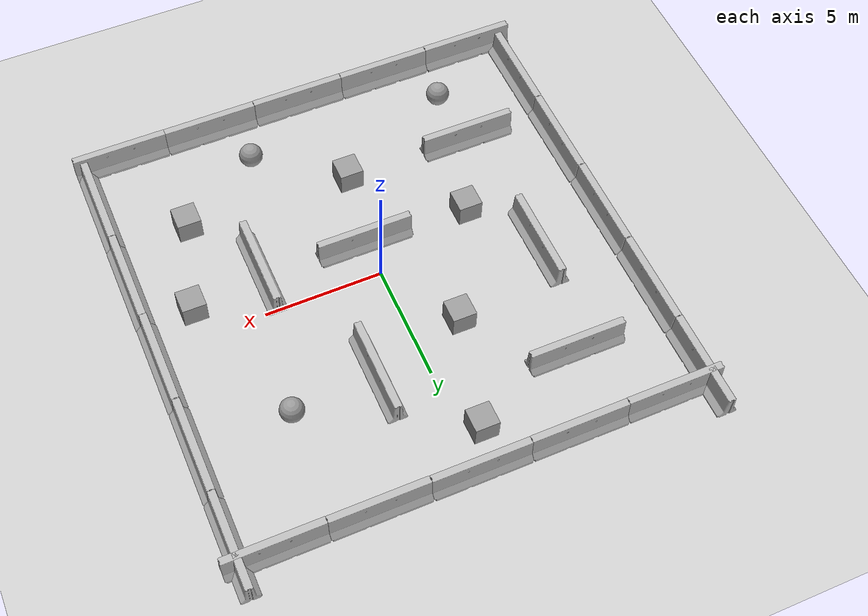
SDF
<sdf version="1.6">
 <world name="default">
  <light name="sun" type="directional">
   <pose>0 0 10 0 -0 0</pose>
   <diffuse>0.8 0.8 0.8 1</diffuse>
   <specular>0.1 0.1 0.1 1</specular>
   <attenuation>
    <range>1000</range>
    <constant>0.9</constant>
    <linear>0.01</linear>
    <quadratic>0.001</quadratic>
   </attenuation>
   <direction>-0.5 0.5 -1</direction>
  </light>
  <model name="ground_plane">
   <static>1</static>
   <link name="link">
    <collision name="collision">
     <geometry><plane><normal>0 0 1</normal><size>100 100</size></plane></geometry>
     <surface><friction><ode><mu>100</mu><mu2>50</mu2></ode></friction></surface>
    </collision>
    <visual name="visual">
     <cast_shadows>0</cast_shadows>
     <geometry><plane><normal>0 0 1</normal><size>100 100</size></plane></geometry>
     <material>
      <script><uri>file://media/materials/scripts/gazebo.material</uri><name>Gazebo/Grey</name></script>
     </material>
    </visual>
   </link>
  </model>
  <physics name="default_physics" default="0" type="ode">
   <max_step_size>0.01</max_step_size>
   <real_time_factor>1</real_time_factor>
   <real_time_update_rate>100</real_time_update_rate>
  </physics>
  <gravity>0 0 -9.8</gravity>
  <magnetic_field>6e-06 2.3e-05 -4.2e-05</magnetic_field>
  <atmosphere type="adiabatic"/>
  <scene><ambient>0.4 0.4 0.4 1</ambient><background>0.7 0.7 0.7 1</background><shadows>1</shadows></scene>
  <spherical_coordinates>
   <surface_model>EARTH_WGS84</surface_model>
   <latitude_deg>0</latitude_deg>
   <longitude_deg>0</longitude_deg>
   <elevation>0</elevation>
   <heading_deg>0</heading_deg>
  </spherical_coordinates>
  <model name="jersey_barrier">
   <static>1</static>
   <link name="link">
    <visual name="visual">
     <geometry>
      <mesh><uri>model://jersey_barrier/meshes/jersey_barrier.dae</uri><scale>1 1 1</scale></mesh>
     </geometry>
    </visual>
    <collision name="upright">
     <pose>0 0 0.5715 0 -0 0</pose>
     <geometry><box><size>4.06542 0.3063 1.143</size></box></geometry>
    </collision>
    <collision name="base">
     <pose>0 0 0.032258 0 -0 0</pose>
     <geometry><box><size>4.06542 0.8107 0.064516</size></box></geometry>
    </collision>
    <collision name="base2">
     <pose>0 0 0.1 0 -0 0</pose>
     <geometry><box><size>4.06542 0.65 0.1</size></box></geometry>
    </collision>
    <collision name="base3">
     <pose>0 0 0.2 0 -0 0</pose>
     <geometry><box><size>4.06542 0.5 0.1</size></box></geometry>
    </collision>
    <collision name="left-angle">
     <pose>0 -0.224 0.2401 0.9 -0 0</pose>
     <geometry><box><size>4.06542 0.5 0.064516</size></box></geometry>
    </collision>
    <collision name="right-angle">
     <pose>0 0.224 0.2401 -0.9 0 0</pose>
     <geometry><box><size>4.06542 0.5 0.064516</size></box></geometry>
    </collision>
   </link>
   <pose>-8.03161 9.55323 0 0 -0 0</pose>
  </model>
  <model name="jersey_barrier_clone">
   <static>1</static>
   <link name="link">
    <visual name="visual">
     <geometry>
      <mesh><uri>model://jersey_barrier/meshes/jersey_barrier.dae</uri><scale>1 1 1</scale></mesh>
     </geometry>
    </visual>
    <collision name="upright">
     <pose>0 0 0.5715 0 -0 0</pose>
     <geometry><box><size>4.06542 0.3063 1.143</size></box></geometry>
    </collision>
    <collision name="base">
     <pose>0 0 0.032258 0 -0 0</pose>
     <geometry><box><size>4.06542 0.8107 0.064516</size></box></geometry>
    </collision>
    <collision name="base2">
     <pose>0 0 0.1 0 -0 0</pose>
     <geometry><box><size>4.06542 0.65 0.1</size></box></geometry>
    </collision>
    <collision name="base3">
     <pose>0 0 0.2 0 -0 0</pose>
     <geometry><box><size>4.06542 0.5 0.1</size></box></geometry>
    </collision>
    <collision name="left-angle">
     <pose>0 -0.224 0.2401 0.9 -0 0</pose>
     <geometry><box><size>4.06542 0.5 0.064516</size></box></geometry>
    </collision>
    <collision name="right-angle">
     <pose>0 0.224 0.2401 -0.9 0 0</pose>
     <geometry><box><size>4.06542 0.5 0.064516</size></box></geometry>
    </collision>
   </link>
   <pose>-3.98653 9.56272 0 0 -0 0</pose>
  </model>
  <model name="jersey_barrier_clone_0">
   <static>1</static>
   <link name="link">
    <visual name="visual">
     <geometry>
      <mesh><uri>model://jersey_barrier/meshes/jersey_barrier.dae</uri><scale>1 1 1</scale></mesh>
     </geometry>
    </visual>
    <collision name="upright">
     <pose>0 0 0.5715 0 -0 0</pose>
     <geometry><box><size>4.06542 0.3063 1.143</size></box></geometry>
    </collision>
    <collision name="base">
     <pose>0 0 0.032258 0 -0 0</pose>
     <geometry><box><size>4.06542 0.8107 0.064516</size></box></geometry>
    </collision>
    <collision name="base2">
     <pose>0 0 0.1 0 -0 0</pose>
     <geometry><box><size>4.06542 0.65 0.1</size></box></geometry>
    </collision>
    <collision name="base3">
     <pose>0 0 0.2 0 -0 0</pose>
     <geometry><box><size>4.06542 0.5 0.1</size></box></geometry>
    </collision>
    <collision name="left-angle">
     <pose>0 -0.224 0.2401 0.9 -0 0</pose>
     <geometry><box><size>4.06542 0.5 0.064516</size></box></geometry>
    </collision>
    <collision name="right-angle">
     <pose>0 0.224 0.2401 -0.9 0 0</pose>
     <geometry><box><size>4.06542 0.5 0.064516</size></box></geometry>
    </collision>
   </link>
   <pose>0.055023 9.57121 0 0 -0 0</pose>
  </model>
  <model name="jersey_barrier_clone_1">
   <static>1</static>
   <link name="link">
    <visual name="visual">
     <geometry>
      <mesh><uri>model://jersey_barrier/meshes/jersey_barrier.dae</uri><scale>1 1 1</scale></mesh>
     </geometry>
    </visual>
    <collision name="upright">
     <pose>0 0 0.5715 0 -0 0</pose>
     <geometry><box><size>4.06542 0.3063 1.143</size></box></geometry>
    </collision>
    <collision name="base">
     <pose>0 0 0.032258 0 -0 0</pose>
     <geometry><box><size>4.06542 0.8107 0.064516</size></box></geometry>
    </collision>
    <collision name="base2">
     <pose>0 0 0.1 0 -0 0</pose>
     <geometry><box><size>4.06542 0.65 0.1</size></box></geometry>
    </collision>
    <collision name="base3">
     <pose>0 0 0.2 0 -0 0</pose>
     <geometry><box><size>4.06542 0.5 0.1</size></box></geometry>
    </collision>
    <collision name="left-angle">
     <pose>0 -0.224 0.2401 0.9 -0 0</pose>
     <geometry><box><size>4.06542 0.5 0.064516</size></box></geometry>
    </collision>
    <collision name="right-angle">
     <pose>0 0.224 0.2401 -0.9 0 0</pose>
     <geometry><box><size>4.06542 0.5 0.064516</size></box></geometry>
    </collision>
   </link>
   <pose>4.10906 9.55829 0 0 -0 0</pose>
  </model>
  <model name="jersey_barrier_clone_2">
   <static>1</static>
   <link name="link">
    <visual name="visual">
     <geometry>
      <mesh><uri>model://jersey_barrier/meshes/jersey_barrier.dae</uri><scale>1 1 1</scale></mesh>
     </geometry>
    </visual>
    <collision name="upright">
     <pose>0 0 0.5715 0 -0 0</pose>
     <geometry><box><size>4.06542 0.3063 1.143</size></box></geometry>
    </collision>
    <collision name="base">
     <pose>0 0 0.032258 0 -0 0</pose>
     <geometry><box><size>4.06542 0.8107 0.064516</size></box></geometry>
    </collision>
    <collision name="base2">
     <pose>0 0 0.1 0 -0 0</pose>
     <geometry><box><size>4.06542 0.65 0.1</size></box></geometry>
    </collision>
    <collision name="base3">
     <pose>0 0 0.2 0 -0 0</pose>
     <geometry><box><size>4.06542 0.5 0.1</size></box></geometry>
    </collision>
    <collision name="left-angle">
     <pose>0 -0.224 0.2401 0.9 -0 0</pose>
     <geometry><box><size>4.06542 0.5 0.064516</size></box></geometry>
    </collision>
    <collision name="right-angle">
     <pose>0 0.224 0.2401 -0.9 0 0</pose>
     <geometry><box><size>4.06542 0.5 0.064516</size></box></geometry>
    </collision>
   </link>
   <pose>8.15037 9.54861 0 0 -0 0</pose>
  </model>
  <model name="jersey_barrier_clone_3">
   <static>1</static>
   <link name="link">
    <visual name="visual">
     <geometry>
      <mesh><uri>model://jersey_barrier/meshes/jersey_barrier.dae</uri><scale>1 1 1</scale></mesh>
     </geometry>
    </visual>
    <collision name="upright">
     <pose>0 0 0.5715 0 -0 0</pose>
     <geometry><box><size>4.06542 0.3063 1.143</size></box></geometry>
    </collision>
    <collision name="base">
     <pose>0 0 0.032258 0 -0 0</pose>
     <geometry><box><size>4.06542 0.8107 0.064516</size></box></geometry>
    </collision>
    <collision name="base2">
     <pose>0 0 0.1 0 -0 0</pose>
     <geometry><box><size>4.06542 0.65 0.1</size></box></geometry>
    </collision>
    <collision name="base3">
     <pose>0 0 0.2 0 -0 0</pose>
     <geometry><box><size>4.06542 0.5 0.1</size></box></geometry>
    </collision>
    <collision name="left-angle">
     <pose>0 -0.224 0.2401 0.9 -0 0</pose>
     <geometry><box><size>4.06542 0.5 0.064516</size></box></geometry>
    </collision>
    <collision name="right-angle">
     <pose>0 0.224 0.2401 -0.9 0 0</pose>
     <geometry><box><size>4.06542 0.5 0.064516</size></box></geometry>
    </collision>
   </link>
   <pose>7.94638 -9.57135 0 0 -0 0</pose>
  </model>
  <model name="jersey_barrier_clone_4">
   <static>1</static>
   <link name="link">
    <visual name="visual">
     <geometry>
      <mesh><uri>model://jersey_barrier/meshes/jersey_barrier.dae</uri><scale>1 1 1</scale></mesh>
     </geometry>
    </visual>
    <collision name="upright">
     <pose>0 0 0.5715 0 -0 0</pose>
     <geometry><box><size>4.06542 0.3063 1.143</size></box></geometry>
    </collision>
    <collision name="base">
     <pose>0 0 0.032258 0 -0 0</pose>
     <geometry><box><size>4.06542 0.8107 0.064516</size></box></geometry>
    </collision>
    <collision name="base2">
     <pose>0 0 0.1 0 -0 0</pose>
     <geometry><box><size>4.06542 0.65 0.1</size></box></geometry>
    </collision>
    <collision name="base3">
     <pose>0 0 0.2 0 -0 0</pose>
     <geometry><box><size>4.06542 0.5 0.1</size></box></geometry>
    </collision>
    <collision name="left-angle">
     <pose>0 -0.224 0.2401 0.9 -0 0</pose>
     <geometry><box><size>4.06542 0.5 0.064516</size></box></geometry>
    </collision>
    <collision name="right-angle">
     <pose>0 0.224 0.2401 -0.9 0 0</pose>
     <geometry><box><size>4.06542 0.5 0.064516</size></box></geometry>
    </collision>
   </link>
   <pose>3.9444 -9.56272 0 0 -0 0</pose>
  </model>
  <model name="jersey_barrier_clone_5">
   <static>1</static>
   <link name="link">
    <visual name="visual">
     <geometry>
      <mesh><uri>model://jersey_barrier/meshes/jersey_barrier.dae</uri><scale>1 1 1</scale></mesh>
     </geometry>
    </visual>
    <collision name="upright">
     <pose>0 0 0.5715 0 -0 0</pose>
     <geometry><box><size>4.06542 0.3063 1.143</size></box></geometry>
    </collision>
    <collision name="base">
     <pose>0 0 0.032258 0 -0 0</pose>
     <geometry><box><size>4.06542 0.8107 0.064516</size></box></geometry>
    </collision>
    <collision name="base2">
     <pose>0 0 0.1 0 -0 0</pose>
     <geometry><box><size>4.06542 0.65 0.1</size></box></geometry>
    </collision>
    <collision name="base3">
     <pose>0 0 0.2 0 -0 0</pose>
     <geometry><box><size>4.06542 0.5 0.1</size></box></geometry>
    </collision>
    <collision name="left-angle">
     <pose>0 -0.224 0.2401 0.9 -0 0</pose>
     <geometry><box><size>4.06542 0.5 0.064516</size></box></geometry>
    </collision>
    <collision name="right-angle">
     <pose>0 0.224 0.2401 -0.9 0 0</pose>
     <geometry><box><size>4.06542 0.5 0.064516</size></box></geometry>
    </collision>
   </link>
   <pose>-0.089366 -9.57464 0 0 -0 0</pose>
  </model>
  <model name="jersey_barrier_clone_6">
   <static>1</static>
   <link name="link">
    <visual name="visual">
     <geometry>
      <mesh><uri>model://jersey_barrier/meshes/jersey_barrier.dae</uri><scale>1 1 1</scale></mesh>
     </geometry>
    </visual>
    <collision name="upright">
     <pose>0 0 0.5715 0 -0 0</pose>
     <geometry><box><size>4.06542 0.3063 1.143</size></box></geometry>
    </collision>
    <collision name="base">
     <pose>0 0 0.032258 0 -0 0</pose>
     <geometry><box><size>4.06542 0.8107 0.064516</size></box></geometry>
    </collision>
    <collision name="base2">
     <pose>0 0 0.1 0 -0 0</pose>
     <geometry><box><size>4.06542 0.65 0.1</size></box></geometry>
    </collision>
    <collision name="base3">
     <pose>0 0 0.2 0 -0 0</pose>
     <geometry><box><size>4.06542 0.5 0.1</size></box></geometry>
    </collision>
    <collision name="left-angle">
     <pose>0 -0.224 0.2401 0.9 -0 0</pose>
     <geometry><box><size>4.06542 0.5 0.064516</size></box></geometry>
    </collision>
    <collision name="right-angle">
     <pose>0 0.224 0.2401 -0.9 0 0</pose>
     <geometry><box><size>4.06542 0.5 0.064516</size></box></geometry>
    </collision>
   </link>
   <pose>-4.1221 -9.57024 0 0 -0 0</pose>
  </model>
  <model name="jersey_barrier_clone_7">
   <static>1</static>
   <link name="link">
    <visual name="visual">
     <geometry>
      <mesh><uri>model://jersey_barrier/meshes/jersey_barrier.dae</uri><scale>1 1 1</scale></mesh>
     </geometry>
    </visual>
    <collision name="upright">
     <pose>0 0 0.5715 0 -0 0</pose>
     <geometry><box><size>4.06542 0.3063 1.143</size></box></geometry>
    </collision>
    <collision name="base">
     <pose>0 0 0.032258 0 -0 0</pose>
     <geometry><box><size>4.06542 0.8107 0.064516</size></box></geometry>
    </collision>
    <collision name="base2">
     <pose>0 0 0.1 0 -0 0</pose>
     <geometry><box><size>4.06542 0.65 0.1</size></box></geometry>
    </collision>
    <collision name="base3">
     <pose>0 0 0.2 0 -0 0</pose>
     <geometry><box><size>4.06542 0.5 0.1</size></box></geometry>
    </collision>
    <collision name="left-angle">
     <pose>0 -0.224 0.2401 0.9 -0 0</pose>
     <geometry><box><size>4.06542 0.5 0.064516</size></box></geometry>
    </collision>
    <collision name="right-angle">
     <pose>0 0.224 0.2401 -0.9 0 0</pose>
     <geometry><box><size>4.06542 0.5 0.064516</size></box></geometry>
    </collision>
   </link>
   <pose>-8.16252 -9.57967 0 0 -0 0</pose>
  </model>
  <model name="jersey_barrier_clone_8">
   <static>1</static>
   <link name="link">
    <visual name="visual">
     <geometry>
      <mesh><uri>model://jersey_barrier/meshes/jersey_barrier.dae</uri><scale>1 1 1</scale></mesh>
     </geometry>
    </visual>
    <collision name="upright">
     <pose>0 0 0.5715 0 -0 0</pose>
     <geometry><box><size>4.06542 0.3063 1.143</size></box></geometry>
    </collision>
    <collision name="base">
     <pose>0 0 0.032258 0 -0 0</pose>
     <geometry><box><size>4.06542 0.8107 0.064516</size></box></geometry>
    </collision>
    <collision name="base2">
     <pose>0 0 0.1 0 -0 0</pose>
     <geometry><box><size>4.06542 0.65 0.1</size></box></geometry>
    </collision>
    <collision name="base3">
     <pose>0 0 0.2 0 -0 0</pose>
     <geometry><box><size>4.06542 0.5 0.1</size></box></geometry>
    </collision>
    <collision name="left-angle">
     <pose>0 -0.224 0.2401 0.9 -0 0</pose>
     <geometry><box><size>4.06542 0.5 0.064516</size></box></geometry>
    </collision>
    <collision name="right-angle">
     <pose>0 0.224 0.2401 -0.9 0 0</pose>
     <geometry><box><size>4.06542 0.5 0.064516</size></box></geometry>
    </collision>
   </link>
   <pose>-9.56309 -7.16364 0 0 0 -1.56996</pose>
  </model>
  <model name="jersey_barrier_clone_8_clone">
   <static>1</static>
   <link name="link">
    <visual name="visual">
     <geometry>
      <mesh><uri>model://jersey_barrier/meshes/jersey_barrier.dae</uri><scale>1 1 1</scale></mesh>
     </geometry>
    </visual>
    <collision name="upright">
     <pose>0 0 0.5715 0 -0 0</pose>
     <geometry><box><size>4.06542 0.3063 1.143</size></box></geometry>
    </collision>
    <collision name="base">
     <pose>0 0 0.032258 0 -0 0</pose>
     <geometry><box><size>4.06542 0.8107 0.064516</size></box></geometry>
    </collision>
    <collision name="base2">
     <pose>0 0 0.1 0 -0 0</pose>
     <geometry><box><size>4.06542 0.65 0.1</size></box></geometry>
    </collision>
    <collision name="base3">
     <pose>0 0 0.2 0 -0 0</pose>
     <geometry><box><size>4.06542 0.5 0.1</size></box></geometry>
    </collision>
    <collision name="left-angle">
     <pose>0 -0.224 0.2401 0.9 -0 0</pose>
     <geometry><box><size>4.06542 0.5 0.064516</size></box></geometry>
    </collision>
    <collision name="right-angle">
     <pose>0 0.224 0.2401 -0.9 0 0</pose>
     <geometry><box><size>4.06542 0.5 0.064516</size></box></geometry>
    </collision>
   </link>
   <pose>-9.5624 -3.11245 0 0 0 -1.56996</pose>
  </model>
  <model name="jersey_barrier_clone_8_clone_0">
   <static>1</static>
   <link name="link">
    <visual name="visual">
     <geometry>
      <mesh><uri>model://jersey_barrier/meshes/jersey_barrier.dae</uri><scale>1 1 1</scale></mesh>
     </geometry>
    </visual>
    <collision name="upright">
     <pose>0 0 0.5715 0 -0 0</pose>
     <geometry><box><size>4.06542 0.3063 1.143</size></box></geometry>
    </collision>
    <collision name="base">
     <pose>0 0 0.032258 0 -0 0</pose>
     <geometry><box><size>4.06542 0.8107 0.064516</size></box></geometry>
    </collision>
    <collision name="base2">
     <pose>0 0 0.1 0 -0 0</pose>
     <geometry><box><size>4.06542 0.65 0.1</size></box></geometry>
    </collision>
    <collision name="base3">
     <pose>0 0 0.2 0 -0 0</pose>
     <geometry><box><size>4.06542 0.5 0.1</size></box></geometry>
    </collision>
    <collision name="left-angle">
     <pose>0 -0.224 0.2401 0.9 -0 0</pose>
     <geometry><box><size>4.06542 0.5 0.064516</size></box></geometry>
    </collision>
    <collision name="right-angle">
     <pose>0 0.224 0.2401 -0.9 0 0</pose>
     <geometry><box><size>4.06542 0.5 0.064516</size></box></geometry>
    </collision>
   </link>
   <pose>-9.57906 0.935057 0 0 0 -1.56996</pose>
  </model>
  <model name="jersey_barrier_clone_8_clone_1">
   <static>1</static>
   <link name="link">
    <visual name="visual">
     <geometry>
      <mesh><uri>model://jersey_barrier/meshes/jersey_barrier.dae</uri><scale>1 1 1</scale></mesh>
     </geometry>
    </visual>
    <collision name="upright">
     <pose>0 0 0.5715 0 -0 0</pose>
     <geometry><box><size>4.06542 0.3063 1.143</size></box></geometry>
    </collision>
    <collision name="base">
     <pose>0 0 0.032258 0 -0 0</pose>
     <geometry><box><size>4.06542 0.8107 0.064516</size></box></geometry>
    </collision>
    <collision name="base2">
     <pose>0 0 0.1 0 -0 0</pose>
     <geometry><box><size>4.06542 0.65 0.1</size></box></geometry>
    </collision>
    <collision name="base3">
     <pose>0 0 0.2 0 -0 0</pose>
     <geometry><box><size>4.06542 0.5 0.1</size></box></geometry>
    </collision>
    <collision name="left-angle">
     <pose>0 -0.224 0.2401 0.9 -0 0</pose>
     <geometry><box><size>4.06542 0.5 0.064516</size></box></geometry>
    </collision>
    <collision name="right-angle">
     <pose>0 0.224 0.2401 -0.9 0 0</pose>
     <geometry><box><size>4.06542 0.5 0.064516</size></box></geometry>
    </collision>
   </link>
   <pose>-9.58566 5.00026 0 0 0 -1.56996</pose>
  </model>
  <model name="jersey_barrier_clone_8_clone_2">
   <static>1</static>
   <link name="link">
    <visual name="visual">
     <geometry>
      <mesh><uri>model://jersey_barrier/meshes/jersey_barrier.dae</uri><scale>1 1 1</scale></mesh>
     </geometry>
    </visual>
    <collision name="upright">
     <pose>0 0 0.5715 0 -0 0</pose>
     <geometry><box><size>4.06542 0.3063 1.143</size></box></geometry>
    </collision>
    <collision name="base">
     <pose>0 0 0.032258 0 -0 0</pose>
     <geometry><box><size>4.06542 0.8107 0.064516</size></box></geometry>
    </collision>
    <collision name="base2">
     <pose>0 0 0.1 0 -0 0</pose>
     <geometry><box><size>4.06542 0.65 0.1</size></box></geometry>
    </collision>
    <collision name="base3">
     <pose>0 0 0.2 0 -0 0</pose>
     <geometry><box><size>4.06542 0.5 0.1</size></box></geometry>
    </collision>
    <collision name="left-angle">
     <pose>0 -0.224 0.2401 0.9 -0 0</pose>
     <geometry><box><size>4.06542 0.5 0.064516</size></box></geometry>
    </collision>
    <collision name="right-angle">
     <pose>0 0.224 0.2401 -0.9 0 0</pose>
     <geometry><box><size>4.06542 0.5 0.064516</size></box></geometry>
    </collision>
   </link>
   <pose>-9.59842 9.04591 0 0 0 -1.56996</pose>
  </model>
  <model name="jersey_barrier_clone_8_clone_3">
   <static>1</static>
   <link name="link">
    <visual name="visual">
     <geometry>
      <mesh><uri>model://jersey_barrier/meshes/jersey_barrier.dae</uri><scale>1 1 1</scale></mesh>
     </geometry>
    </visual>
    <collision name="upright">
     <pose>0 0 0.5715 0 -0 0</pose>
     <geometry><box><size>4.06542 0.3063 1.143</size></box></geometry>
    </collision>
    <collision name="base">
     <pose>0 0 0.032258 0 -0 0</pose>
     <geometry><box><size>4.06542 0.8107 0.064516</size></box></geometry>
    </collision>
    <collision name="base2">
     <pose>0 0 0.1 0 -0 0</pose>
     <geometry><box><size>4.06542 0.65 0.1</size></box></geometry>
    </collision>
    <collision name="base3">
     <pose>0 0 0.2 0 -0 0</pose>
     <geometry><box><size>4.06542 0.5 0.1</size></box></geometry>
    </collision>
    <collision name="left-angle">
     <pose>0 -0.224 0.2401 0.9 -0 0</pose>
     <geometry><box><size>4.06542 0.5 0.064516</size></box></geometry>
    </collision>
    <collision name="right-angle">
     <pose>0 0.224 0.2401 -0.9 0 0</pose>
     <geometry><box><size>4.06542 0.5 0.064516</size></box></geometry>
    </collision>
   </link>
   <pose>9.56686 -7.27337 0 0 0 -1.56996</pose>
  </model>
  <model name="jersey_barrier_clone_8_clone_4">
   <static>1</static>
   <link name="link">
    <visual name="visual">
     <geometry>
      <mesh><uri>model://jersey_barrier/meshes/jersey_barrier.dae</uri><scale>1 1 1</scale></mesh>
     </geometry>
    </visual>
    <collision name="upright">
     <pose>0 0 0.5715 0 -0 0</pose>
     <geometry><box><size>4.06542 0.3063 1.143</size></box></geometry>
    </collision>
    <collision name="base">
     <pose>0 0 0.032258 0 -0 0</pose>
     <geometry><box><size>4.06542 0.8107 0.064516</size></box></geometry>
    </collision>
    <collision name="base2">
     <pose>0 0 0.1 0 -0 0</pose>
     <geometry><box><size>4.06542 0.65 0.1</size></box></geometry>
    </collision>
    <collision name="base3">
     <pose>0 0 0.2 0 -0 0</pose>
     <geometry><box><size>4.06542 0.5 0.1</size></box></geometry>
    </collision>
    <collision name="left-angle">
     <pose>0 -0.224 0.2401 0.9 -0 0</pose>
     <geometry><box><size>4.06542 0.5 0.064516</size></box></geometry>
    </collision>
    <collision name="right-angle">
     <pose>0 0.224 0.2401 -0.9 0 0</pose>
     <geometry><box><size>4.06542 0.5 0.064516</size></box></geometry>
    </collision>
   </link>
   <pose>9.56899 -3.24118 0 0 0 -1.56996</pose>
  </model>
  <model name="jersey_barrier_clone_8_clone_5">
   <static>1</static>
   <link name="link">
    <visual name="visual">
     <geometry>
      <mesh><uri>model://jersey_barrier/meshes/jersey_barrier.dae</uri><scale>1 1 1</scale></mesh>
     </geometry>
    </visual>
    <collision name="upright">
     <pose>0 0 0.5715 0 -0 0</pose>
     <geometry><box><size>4.06542 0.3063 1.143</size></box></geometry>
    </collision>
    <collision name="base">
     <pose>0 0 0.032258 0 -0 0</pose>
     <geometry><box><size>4.06542 0.8107 0.064516</size></box></geometry>
    </collision>
    <collision name="base2">
     <pose>0 0 0.1 0 -0 0</pose>
     <geometry><box><size>4.06542 0.65 0.1</size></box></geometry>
    </collision>
    <collision name="base3">
     <pose>0 0 0.2 0 -0 0</pose>
     <geometry><box><size>4.06542 0.5 0.1</size></box></geometry>
    </collision>
    <collision name="left-angle">
     <pose>0 -0.224 0.2401 0.9 -0 0</pose>
     <geometry><box><size>4.06542 0.5 0.064516</size></box></geometry>
    </collision>
    <collision name="right-angle">
     <pose>0 0.224 0.2401 -0.9 0 0</pose>
     <geometry><box><size>4.06542 0.5 0.064516</size></box></geometry>
    </collision>
   </link>
   <pose>9.54876 0.784882 0 0 0 -1.56996</pose>
  </model>
  <model name="jersey_barrier_clone_8_clone_6">
   <static>1</static>
   <link name="link">
    <visual name="visual">
     <geometry>
      <mesh><uri>model://jersey_barrier/meshes/jersey_barrier.dae</uri><scale>1 1 1</scale></mesh>
     </geometry>
    </visual>
    <collision name="upright">
     <pose>0 0 0.5715 0 -0 0</pose>
     <geometry><box><size>4.06542 0.3063 1.143</size></box></geometry>
    </collision>
    <collision name="base">
     <pose>0 0 0.032258 0 -0 0</pose>
     <geometry><box><size>4.06542 0.8107 0.064516</size></box></geometry>
    </collision>
    <collision name="base2">
     <pose>0 0 0.1 0 -0 0</pose>
     <geometry><box><size>4.06542 0.65 0.1</size></box></geometry>
    </collision>
    <collision name="base3">
     <pose>0 0 0.2 0 -0 0</pose>
     <geometry><box><size>4.06542 0.5 0.1</size></box></geometry>
    </collision>
    <collision name="left-angle">
     <pose>0 -0.224 0.2401 0.9 -0 0</pose>
     <geometry><box><size>4.06542 0.5 0.064516</size></box></geometry>
    </collision>
    <collision name="right-angle">
     <pose>0 0.224 0.2401 -0.9 0 0</pose>
     <geometry><box><size>4.06542 0.5 0.064516</size></box></geometry>
    </collision>
   </link>
   <pose>9.53874 4.83845 0 0 0 -1.56996</pose>
  </model>
  <model name="jersey_barrier_clone_8_clone_7">
   <static>1</static>
   <link name="link">
    <visual name="visual">
     <geometry>
      <mesh><uri>model://jersey_barrier/meshes/jersey_barrier.dae</uri><scale>1 1 1</scale></mesh>
     </geometry>
    </visual>
    <collision name="upright">
     <pose>0 0 0.5715 0 -0 0</pose>
     <geometry><box><size>4.06542 0.3063 1.143</size></box></geometry>
    </collision>
    <collision name="base">
     <pose>0 0 0.032258 0 -0 0</pose>
     <geometry><box><size>4.06542 0.8107 0.064516</size></box></geometry>
    </collision>
    <collision name="base2">
     <pose>0 0 0.1 0 -0 0</pose>
     <geometry><box><size>4.06542 0.65 0.1</size></box></geometry>
    </collision>
    <collision name="base3">
     <pose>0 0 0.2 0 -0 0</pose>
     <geometry><box><size>4.06542 0.5 0.1</size></box></geometry>
    </collision>
    <collision name="left-angle">
     <pose>0 -0.224 0.2401 0.9 -0 0</pose>
     <geometry><box><size>4.06542 0.5 0.064516</size></box></geometry>
    </collision>
    <collision name="right-angle">
     <pose>0 0.224 0.2401 -0.9 0 0</pose>
     <geometry><box><size>4.06542 0.5 0.064516</size></box></geometry>
    </collision>
   </link>
   <pose>9.54028 8.88739 0 0 0 -1.56996</pose>
  </model>
  <model name="jersey_barrier_clone_8_clone_5_clone">
   <static>1</static>
   <link name="link">
    <visual name="visual">
     <geometry>
      <mesh><uri>model://jersey_barrier/meshes/jersey_barrier.dae</uri><scale>1 1 1</scale></mesh>
     </geometry>
    </visual>
    <collision name="upright">
     <pose>0 0 0.5715 0 -0 0</pose>
     <geometry><box><size>4.06542 0.3063 1.143</size></box></geometry>
    </collision>
    <collision name="base">
     <pose>0 0 0.032258 0 -0 0</pose>
     <geometry><box><size>4.06542 0.8107 0.064516</size></box></geometry>
    </collision>
    <collision name="base2">
     <pose>0 0 0.1 0 -0 0</pose>
     <geometry><box><size>4.06542 0.65 0.1</size></box></geometry>
    </collision>
    <collision name="base3">
     <pose>0 0 0.2 0 -0 0</pose>
     <geometry><box><size>4.06542 0.5 0.1</size></box></geometry>
    </collision>
    <collision name="left-angle">
     <pose>0 -0.224 0.2401 0.9 -0 0</pose>
     <geometry><box><size>4.06542 0.5 0.064516</size></box></geometry>
    </collision>
    <collision name="right-angle">
     <pose>0 0.224 0.2401 -0.9 0 0</pose>
     <geometry><box><size>4.06542 0.5 0.064516</size></box></geometry>
    </collision>
   </link>
   <pose>4.46493 -1.86742 0 0 0 -1.56996</pose>
  </model>
  <model name="jersey_barrier_clone_8_clone_5_clone_0">
   <static>1</static>
   <link name="link">
    <visual name="visual">
     <geometry>
      <mesh><uri>model://jersey_barrier/meshes/jersey_barrier.dae</uri><scale>1 1 1</scale></mesh>
     </geometry>
    </visual>
    <collision name="upright">
     <pose>0 0 0.5715 0 -0 0</pose>
     <geometry><box><size>4.06542 0.3063 1.143</size></box></geometry>
    </collision>
    <collision name="base">
     <pose>0 0 0.032258 0 -0 0</pose>
     <geometry><box><size>4.06542 0.8107 0.064516</size></box></geometry>
    </collision>
    <collision name="base2">
     <pose>0 0 0.1 0 -0 0</pose>
     <geometry><box><size>4.06542 0.65 0.1</size></box></geometry>
    </collision>
    <collision name="base3">
     <pose>0 0 0.2 0 -0 0</pose>
     <geometry><box><size>4.06542 0.5 0.1</size></box></geometry>
    </collision>
    <collision name="left-angle">
     <pose>0 -0.224 0.2401 0.9 -0 0</pose>
     <geometry><box><size>4.06542 0.5 0.064516</size></box></geometry>
    </collision>
    <collision name="right-angle">
     <pose>0 0.224 0.2401 -0.9 0 0</pose>
     <geometry><box><size>4.06542 0.5 0.064516</size></box></geometry>
    </collision>
   </link>
   <pose>2.00254 4.40637 0 0 0 -1.56996</pose>
  </model>
  <model name="jersey_barrier_clone_8_clone_5_clone_clone">
   <static>1</static>
   <link name="link">
    <visual name="visual">
     <geometry>
      <mesh><uri>model://jersey_barrier/meshes/jersey_barrier.dae</uri><scale>1 1 1</scale></mesh>
     </geometry>
    </visual>
    <collision name="upright">
     <pose>0 0 0.5715 0 -0 0</pose>
     <geometry><box><size>4.06542 0.3063 1.143</size></box></geometry>
    </collision>
    <collision name="base">
     <pose>0 0 0.032258 0 -0 0</pose>
     <geometry><box><size>4.06542 0.8107 0.064516</size></box></geometry>
    </collision>
    <collision name="base2">
     <pose>0 0 0.1 0 -0 0</pose>
     <geometry><box><size>4.06542 0.65 0.1</size></box></geometry>
    </collision>
    <collision name="base3">
     <pose>0 0 0.2 0 -0 0</pose>
     <geometry><box><size>4.06542 0.5 0.1</size></box></geometry>
    </collision>
    <collision name="left-angle">
     <pose>0 -0.224 0.2401 0.9 -0 0</pose>
     <geometry><box><size>4.06542 0.5 0.064516</size></box></geometry>
    </collision>
    <collision name="right-angle">
     <pose>0 0.224 0.2401 -0.9 0 0</pose>
     <geometry><box><size>4.06542 0.5 0.064516</size></box></geometry>
    </collision>
   </link>
   <pose>-6.43878 1.31541 0 0 0 -1.56996</pose>
  </model>
  <model name="jersey_barrier_clone_0_clone">
   <static>1</static>
   <link name="link">
    <visual name="visual">
     <geometry>
      <mesh><uri>model://jersey_barrier/meshes/jersey_barrier.dae</uri><scale>1 1 1</scale></mesh>
     </geometry>
    </visual>
    <collision name="upright">
     <pose>0 0 0.5715 0 -0 0</pose>
     <geometry><box><size>4.06542 0.3063 1.143</size></box></geometry>
    </collision>
    <collision name="base">
     <pose>0 0 0.032258 0 -0 0</pose>
     <geometry><box><size>4.06542 0.8107 0.064516</size></box></geometry>
    </collision>
    <collision name="base2">
     <pose>0 0 0.1 0 -0 0</pose>
     <geometry><box><size>4.06542 0.65 0.1</size></box></geometry>
    </collision>
    <collision name="base3">
     <pose>0 0 0.2 0 -0 0</pose>
     <geometry><box><size>4.06542 0.5 0.1</size></box></geometry>
    </collision>
    <collision name="left-angle">
     <pose>0 -0.224 0.2401 0.9 -0 0</pose>
     <geometry><box><size>4.06542 0.5 0.064516</size></box></geometry>
    </collision>
    <collision name="right-angle">
     <pose>0 0.224 0.2401 -0.9 0 0</pose>
     <geometry><box><size>4.06542 0.5 0.064516</size></box></geometry>
    </collision>
   </link>
   <pose>0.067849 -1.57579 0 0 -0 0</pose>
  </model>
  <model name="jersey_barrier_clone_0_clone_0">
   <static>1</static>
   <link name="link">
    <visual name="visual">
     <geometry>
      <mesh><uri>model://jersey_barrier/meshes/jersey_barrier.dae</uri><scale>1 1 1</scale></mesh>
     </geometry>
    </visual>
    <collision name="upright">
     <pose>0 0 0.5715 0 -0 0</pose>
     <geometry><box><size>4.06542 0.3063 1.143</size></box></geometry>
    </collision>
    <collision name="base">
     <pose>0 0 0.032258 0 -0 0</pose>
     <geometry><box><size>4.06542 0.8107 0.064516</size></box></geometry>
    </collision>
    <collision name="base2">
     <pose>0 0 0.1 0 -0 0</pose>
     <geometry><box><size>4.06542 0.65 0.1</size></box></geometry>
    </collision>
    <collision name="base3">
     <pose>0 0 0.2 0 -0 0</pose>
     <geometry><box><size>4.06542 0.5 0.1</size></box></geometry>
    </collision>
    <collision name="left-angle">
     <pose>0 -0.224 0.2401 0.9 -0 0</pose>
     <geometry><box><size>4.06542 0.5 0.064516</size></box></geometry>
    </collision>
    <collision name="right-angle">
     <pose>0 0.224 0.2401 -0.9 0 0</pose>
     <geometry><box><size>4.06542 0.5 0.064516</size></box></geometry>
    </collision>
   </link>
   <pose>-5.54789 6.32844 0 0 -0 0</pose>
  </model>
  <model name="jersey_barrier_clone_0_clone_1">
   <static>1</static>
   <link name="link">
    <visual name="visual">
     <geometry>
      <mesh><uri>model://jersey_barrier/meshes/jersey_barrier.dae</uri><scale>1 1 1</scale></mesh>
     </geometry>
    </visual>
    <collision name="upright">
     <pose>0 0 0.5715 0 -0 0</pose>
     <geometry><box><size>4.06542 0.3063 1.143</size></box></geometry>
    </collision>
    <collision name="base">
     <pose>0 0 0.032258 0 -0 0</pose>
     <geometry><box><size>4.06542 0.8107 0.064516</size></box></geometry>
    </collision>
    <collision name="base2">
     <pose>0 0 0.1 0 -0 0</pose>
     <geometry><box><size>4.06542 0.65 0.1</size></box></geometry>
    </collision>
    <collision name="base3">
     <pose>0 0 0.2 0 -0 0</pose>
     <geometry><box><size>4.06542 0.5 0.1</size></box></geometry>
    </collision>
    <collision name="left-angle">
     <pose>0 -0.224 0.2401 0.9 -0 0</pose>
     <geometry><box><size>4.06542 0.5 0.064516</size></box></geometry>
    </collision>
    <collision name="right-angle">
     <pose>0 0.224 0.2401 -0.9 0 0</pose>
     <geometry><box><size>4.06542 0.5 0.064516</size></box></geometry>
    </collision>
   </link>
   <pose>-6.06373 -4.90381 0 0 -0 0</pose>
  </model>
  <model name="unit_sphere_0_0">
   <pose>5.61157 4.63994 0.5 0 -0 0</pose>
   <link name="link">
    <inertial>
     <mass>1</mass>
     <inertia><ixx>0.1</ixx><ixy>0</ixy><ixz>0</ixz><iyy>0.1</iyy><iyz>0</iyz><izz>0.1</izz></inertia>
    </inertial>
    <collision name="collision"><geometry><sphere><radius>0.5</radius></sphere></geometry></collision>
    <visual name="visual">
     <geometry><sphere><radius>0.5</radius></sphere></geometry>
     <material>
      <script><name>Gazebo/Grey</name><uri>file://media/materials/scripts/gazebo.material</uri></script>
     </material>
    </visual>
   </link>
  </model>
  <model name="unit_box_0_0">
   <pose>-0.568306 -4.93041 0.49907 0.0001 0 -1e-06</pose>
   <link name="link">
    <inertial>
     <mass>1</mass>
     <inertia>
      <ixx>0.166667</ixx>
      <ixy>0</ixy>
      <ixz>0</ixz>
      <iyy>0.166667</iyy>
      <iyz>0</iyz>
      <izz>0.166667</izz>
     </inertia>
    </inertial>
    <collision name="collision"><geometry><box><size>1 1 1</size></box></geometry></collision>
    <visual name="visual">
     <geometry><box><size>1 1 1</size></box></geometry>
     <material>
      <script><name>Gazebo/Grey</name><uri>file://media/materials/scripts/gazebo.material</uri></script>
     </material>
    </visual>
   </link>
  </model>
  <model name="unit_box_0_1">
   <pose>7.59329 -1.26362 0.49967 -0.00066 0 0</pose>
   <link name="link">
    <inertial>
     <mass>1</mass>
     <inertia>
      <ixx>0.166667</ixx>
      <ixy>0</ixy>
      <ixz>0</ixz>
      <iyy>0.166667</iyy>
      <iyz>0</iyz>
      <izz>0.166667</izz>
     </inertia>
    </inertial>
    <collision name="collision"><geometry><box><size>1 1 1</size></box></geometry></collision>
    <visual name="visual">
     <geometry><box><size>1 1 1</size></box></geometry>
     <material>
      <script><name>Gazebo/Grey</name><uri>file://media/materials/scripts/gazebo.material</uri></script>
     </material>
    </visual>
   </link>
  </model>
  <model name="unit_box_0_2">
   <pose>6.4854 -5.17127 0.49907 0.0001 -0 0</pose>
   <link name="link">
    <inertial>
     <mass>1</mass>
     <inertia>
      <ixx>0.166667</ixx>
      <ixy>0</ixy>
      <ixz>0</ixz>
      <iyy>0.166667</iyy>
      <iyz>0</iyz>
      <izz>0.166667</izz>
     </inertia>
    </inertial>
    <collision name="collision"><geometry><box><size>1 1 1</size></box></geometry></collision>
    <visual name="visual">
     <geometry><box><size>1 1 1</size></box></geometry>
     <material>
      <script><name>Gazebo/Grey</name><uri>file://media/materials/scripts/gazebo.material</uri></script>
     </material>
    </visual>
   </link>
  </model>
  <model name="unit_box_0_3">
   <pose>-0.749982 7.93144 0.49967 0.00066 -0 0</pose>
   <link name="link">
    <inertial>
     <mass>1</mass>
     <inertia>
      <ixx>0.166667</ixx>
      <ixy>0</ixy>
      <ixz>0</ixz>
      <iyy>0.166667</iyy>
      <iyz>0</iyz>
      <izz>0.166667</izz>
     </inertia>
    </inertial>
    <collision name="collision"><geometry><box><size>1 1 1</size></box></geometry></collision>
    <visual name="visual">
     <geometry><box><size>1 1 1</size></box></geometry>
     <material>
      <script><name>Gazebo/Grey</name><uri>file://media/materials/scripts/gazebo.material</uri></script>
     </material>
    </visual>
   </link>
  </model>
  <model name="unit_box_0_4">
   <pose>-1.97783 3.26383 0.49907 0.0001 -0 0</pose>
   <link name="link">
    <inertial>
     <mass>1</mass>
     <inertia>
      <ixx>0.166667</ixx>
      <ixy>0</ixy>
      <ixz>0</ixz>
      <iyy>0.166667</iyy>
      <iyz>0</iyz>
      <izz>0.166667</izz>
     </inertia>
    </inertial>
    <collision name="collision"><geometry><box><size>1 1 1</size></box></geometry></collision>
    <visual name="visual">
     <geometry><box><size>1 1 1</size></box></geometry>
     <material>
      <script><name>Gazebo/Grey</name><uri>file://media/materials/scripts/gazebo.material</uri></script>
     </material>
    </visual>
   </link>
  </model>
  <model name="unit_box_0_5">
   <pose>-4.44396 -1.48883 0.49967 0.00066 -0 0</pose>
   <link name="link">
    <inertial>
     <mass>1</mass>
     <inertia>
      <ixx>0.166667</ixx>
      <ixy>0</ixy>
      <ixz>0</ixz>
      <iyy>0.166667</iyy>
      <iyz>0</iyz>
      <izz>0.166667</izz>
     </inertia>
    </inertial>
    <collision name="collision"><geometry><box><size>1 1 1</size></box></geometry></collision>
    <visual name="visual">
     <geometry><box><size>1 1 1</size></box></geometry>
     <material>
      <script><name>Gazebo/Grey</name><uri>file://media/materials/scripts/gazebo.material</uri></script>
     </material>
    </visual>
   </link>
  </model>
  <model name="unit_sphere_0_1">
   <pose>2.86059 -7.45112 0.5 0 -0 0</pose>
   <link name="link">
    <inertial>
     <mass>1</mass>
     <inertia><ixx>0.1</ixx><ixy>0</ixy><ixz>0</ixz><iyy>0.1</iyy><iyz>0</iyz><izz>0.1</izz></inertia>
    </inertial>
    <collision name="collision"><geometry><sphere><radius>0.5</radius></sphere></geometry></collision>
    <visual name="visual">
     <geometry><sphere><radius>0.5</radius></sphere></geometry>
     <material>
      <script><name>Gazebo/Grey</name><uri>file://media/materials/scripts/gazebo.material</uri></script>
     </material>
    </visual>
   </link>
  </model>
  <model name="unit_sphere_0_2">
   <pose>-5.85644 -7.46688 0.5 0 -0 0</pose>
   <link name="link">
    <inertial>
     <mass>1</mass>
     <inertia><ixx>0.1</ixx><ixy>0</ixy><ixz>0</ixz><iyy>0.1</iyy><iyz>0</iyz><izz>0.1</izz></inertia>
    </inertial>
    <collision name="collision"><geometry><sphere><radius>0.5</radius></sphere></geometry></collision>
    <visual name="visual">
     <geometry><sphere><radius>0.5</radius></sphere></geometry>
     <material>
      <script><name>Gazebo/Grey</name><uri>file://media/materials/scripts/gazebo.material</uri></script>
     </material>
    </visual>
   </link>
  </model>
 </world>
</sdf>
